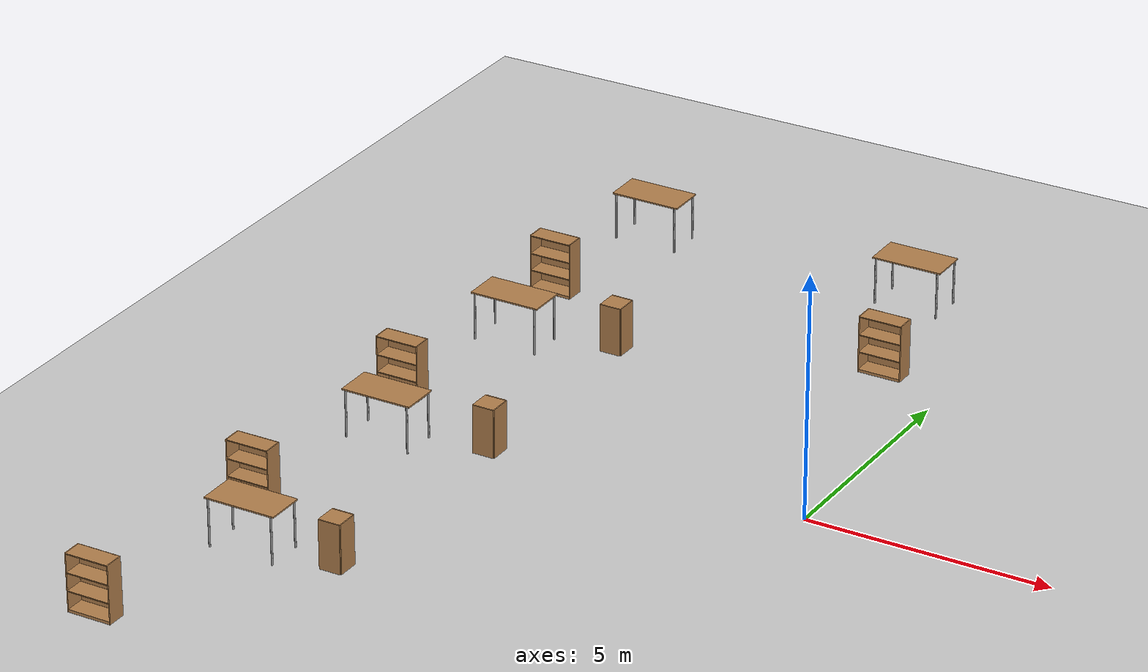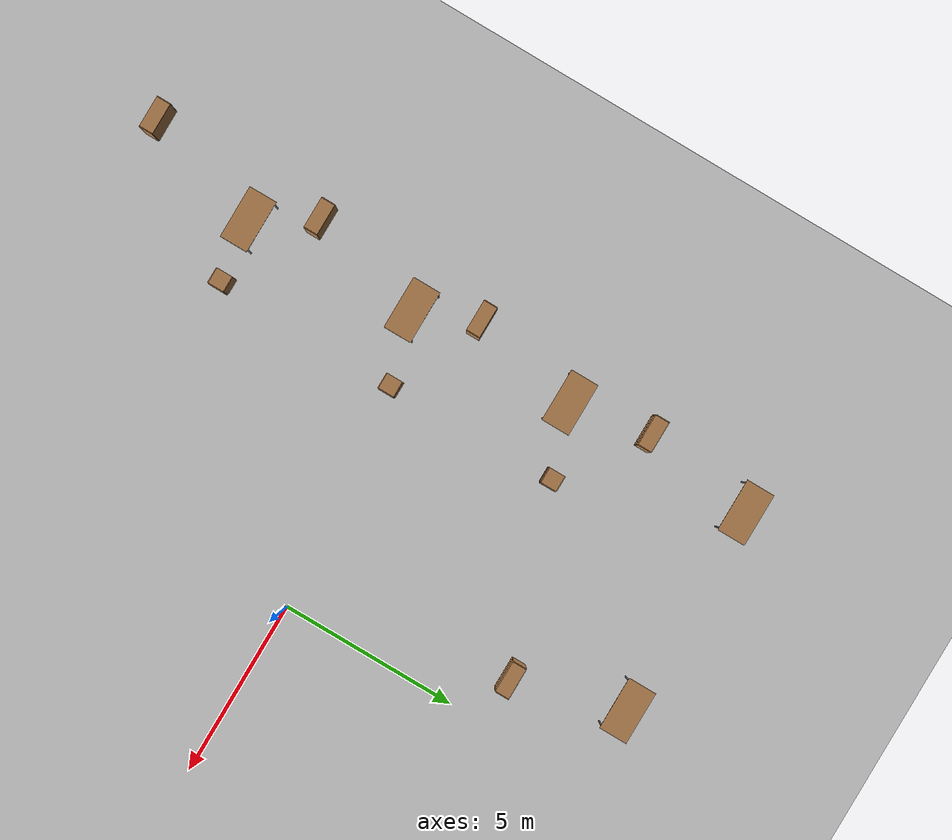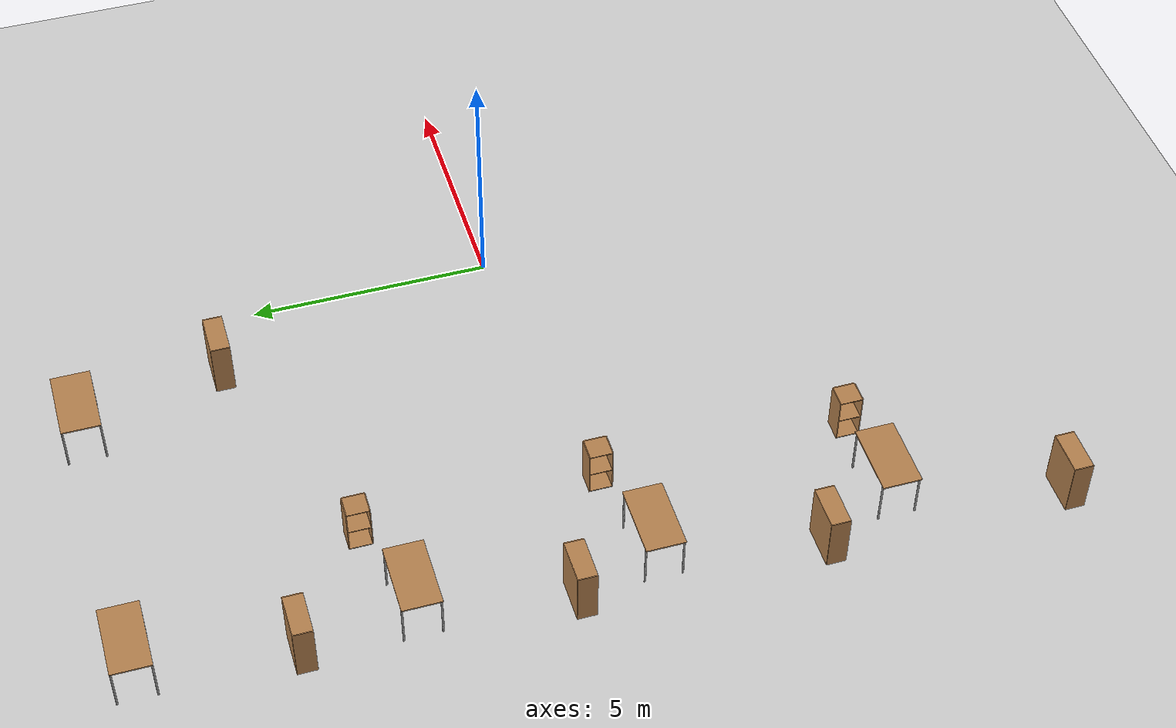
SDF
<sdf version="1.7">
 <world name="default">
  <model name="ground_plane">
   <static>1</static>
   <link name="link">
    <collision name="collision">
     <geometry><plane><normal>0 0 1</normal><size>100 100</size></plane></geometry>
     <surface>
      <contact><collide_bitmask>65535</collide_bitmask></contact>
      <friction><ode><mu>100</mu><mu2>50</mu2></ode></friction>
     </surface>
    </collision>
    <visual name="visual">
     <cast_shadows>0</cast_shadows>
     <geometry><plane><normal>0 0 1</normal><size>100 100</size></plane></geometry>
     <material>
      <script><uri>file://media/materials/scripts/gazebo.material</uri><name>Gazebo/Grey</name></script>
     </material>
    </visual>
   </link>
  </model>
  <model name="table">
   <static>1</static>
   <link name="link">
    <collision name="surface">
     <pose>0 0 1 0 -0 0</pose>
     <geometry><box><size>1.5 0.8 0.03</size></box></geometry>
     <surface><friction><ode><mu>0.6</mu><mu2>0.6</mu2></ode></friction></surface>
    </collision>
    <visual name="visual1">
     <pose>0 0 1 0 -0 0</pose>
     <geometry><box><size>1.5 0.8 0.03</size></box></geometry>
     <material>
      <script><uri>file://media/materials/scripts/gazebo.material</uri><name>Gazebo/Wood</name></script>
     </material>
    </visual>
    <collision name="front_left_leg">
     <pose>0.68 0.38 0.5 0 -0 0</pose>
     <geometry><cylinder><radius>0.02</radius><length>1</length></cylinder></geometry>
    </collision>
    <visual name="front_left_leg">
     <pose>0.68 0.38 0.5 0 -0 0</pose>
     <geometry><cylinder><radius>0.02</radius><length>1</length></cylinder></geometry>
     <material>
      <script><uri>file://media/materials/scripts/gazebo.material</uri><name>Gazebo/Grey</name></script>
     </material>
    </visual>
    <collision name="front_right_leg">
     <pose>0.68 -0.38 0.5 0 -0 0</pose>
     <geometry><cylinder><radius>0.02</radius><length>1</length></cylinder></geometry>
    </collision>
    <visual name="front_right_leg">
     <pose>0.68 -0.38 0.5 0 -0 0</pose>
     <geometry><cylinder><radius>0.02</radius><length>1</length></cylinder></geometry>
     <material>
      <script><uri>file://media/materials/scripts/gazebo.material</uri><name>Gazebo/Grey</name></script>
     </material>
    </visual>
    <collision name="back_right_leg">
     <pose>-0.68 -0.38 0.5 0 -0 0</pose>
     <geometry><cylinder><radius>0.02</radius><length>1</length></cylinder></geometry>
    </collision>
    <visual name="back_right_leg">
     <pose>-0.68 -0.38 0.5 0 -0 0</pose>
     <geometry><cylinder><radius>0.02</radius><length>1</length></cylinder></geometry>
     <material>
      <script><uri>file://media/materials/scripts/gazebo.material</uri><name>Gazebo/Grey</name></script>
     </material>
    </visual>
    <collision name="back_left_leg">
     <pose>-0.68 0.38 0.5 0 -0 0</pose>
     <geometry><cylinder><radius>0.02</radius><length>1</length></cylinder></geometry>
    </collision>
    <visual name="back_left_leg">
     <pose>-0.68 0.38 0.5 0 -0 0</pose>
     <geometry><cylinder><radius>0.02</radius><length>1</length></cylinder></geometry>
     <material>
      <script><uri>file://media/materials/scripts/gazebo.material</uri><name>Gazebo/Grey</name></script>
     </material>
    </visual>
   </link>
   <pose>-8.16897 -5.95032 0 0 -0 0</pose>
  </model>
  <model name="table_0">
   <static>1</static>
   <link name="link">
    <collision name="surface">
     <pose>0 0 1 0 -0 0</pose>
     <geometry><box><size>1.5 0.8 0.03</size></box></geometry>
     <surface><friction><ode><mu>0.6</mu><mu2>0.6</mu2></ode></friction></surface>
    </collision>
    <visual name="visual1">
     <pose>0 0 1 0 -0 0</pose>
     <geometry><box><size>1.5 0.8 0.03</size></box></geometry>
     <material>
      <script><uri>file://media/materials/scripts/gazebo.material</uri><name>Gazebo/Wood</name></script>
     </material>
    </visual>
    <collision name="front_left_leg">
     <pose>0.68 0.38 0.5 0 -0 0</pose>
     <geometry><cylinder><radius>0.02</radius><length>1</length></cylinder></geometry>
    </collision>
    <visual name="front_left_leg">
     <pose>0.68 0.38 0.5 0 -0 0</pose>
     <geometry><cylinder><radius>0.02</radius><length>1</length></cylinder></geometry>
     <material>
      <script><uri>file://media/materials/scripts/gazebo.material</uri><name>Gazebo/Grey</name></script>
     </material>
    </visual>
    <collision name="front_right_leg">
     <pose>0.68 -0.38 0.5 0 -0 0</pose>
     <geometry><cylinder><radius>0.02</radius><length>1</length></cylinder></geometry>
    </collision>
    <visual name="front_right_leg">
     <pose>0.68 -0.38 0.5 0 -0 0</pose>
     <geometry><cylinder><radius>0.02</radius><length>1</length></cylinder></geometry>
     <material>
      <script><uri>file://media/materials/scripts/gazebo.material</uri><name>Gazebo/Grey</name></script>
     </material>
    </visual>
    <collision name="back_right_leg">
     <pose>-0.68 -0.38 0.5 0 -0 0</pose>
     <geometry><cylinder><radius>0.02</radius><length>1</length></cylinder></geometry>
    </collision>
    <visual name="back_right_leg">
     <pose>-0.68 -0.38 0.5 0 -0 0</pose>
     <geometry><cylinder><radius>0.02</radius><length>1</length></cylinder></geometry>
     <material>
      <script><uri>file://media/materials/scripts/gazebo.material</uri><name>Gazebo/Grey</name></script>
     </material>
    </visual>
    <collision name="back_left_leg">
     <pose>-0.68 0.38 0.5 0 -0 0</pose>
     <geometry><cylinder><radius>0.02</radius><length>1</length></cylinder></geometry>
    </collision>
    <visual name="back_left_leg">
     <pose>-0.68 0.38 0.5 0 -0 0</pose>
     <geometry><cylinder><radius>0.02</radius><length>1</length></cylinder></geometry>
     <material>
      <script><uri>file://media/materials/scripts/gazebo.material</uri><name>Gazebo/Grey</name></script>
     </material>
    </visual>
   </link>
   <pose>-8.33103 -1.12506 0 0 -0 0</pose>
  </model>
  <model name="table_1">
   <static>1</static>
   <link name="link">
    <collision name="surface">
     <pose>0 0 1 0 -0 0</pose>
     <geometry><box><size>1.5 0.8 0.03</size></box></geometry>
     <surface><friction><ode><mu>0.6</mu><mu2>0.6</mu2></ode></friction></surface>
    </collision>
    <visual name="visual1">
     <pose>0 0 1 0 -0 0</pose>
     <geometry><box><size>1.5 0.8 0.03</size></box></geometry>
     <material>
      <script><uri>file://media/materials/scripts/gazebo.material</uri><name>Gazebo/Wood</name></script>
     </material>
    </visual>
    <collision name="front_left_leg">
     <pose>0.68 0.38 0.5 0 -0 0</pose>
     <geometry><cylinder><radius>0.02</radius><length>1</length></cylinder></geometry>
    </collision>
    <visual name="front_left_leg">
     <pose>0.68 0.38 0.5 0 -0 0</pose>
     <geometry><cylinder><radius>0.02</radius><length>1</length></cylinder></geometry>
     <material>
      <script><uri>file://media/materials/scripts/gazebo.material</uri><name>Gazebo/Grey</name></script>
     </material>
    </visual>
    <collision name="front_right_leg">
     <pose>0.68 -0.38 0.5 0 -0 0</pose>
     <geometry><cylinder><radius>0.02</radius><length>1</length></cylinder></geometry>
    </collision>
    <visual name="front_right_leg">
     <pose>0.68 -0.38 0.5 0 -0 0</pose>
     <geometry><cylinder><radius>0.02</radius><length>1</length></cylinder></geometry>
     <material>
      <script><uri>file://media/materials/scripts/gazebo.material</uri><name>Gazebo/Grey</name></script>
     </material>
    </visual>
    <collision name="back_right_leg">
     <pose>-0.68 -0.38 0.5 0 -0 0</pose>
     <geometry><cylinder><radius>0.02</radius><length>1</length></cylinder></geometry>
    </collision>
    <visual name="back_right_leg">
     <pose>-0.68 -0.38 0.5 0 -0 0</pose>
     <geometry><cylinder><radius>0.02</radius><length>1</length></cylinder></geometry>
     <material>
      <script><uri>file://media/materials/scripts/gazebo.material</uri><name>Gazebo/Grey</name></script>
     </material>
    </visual>
    <collision name="back_left_leg">
     <pose>-0.68 0.38 0.5 0 -0 0</pose>
     <geometry><cylinder><radius>0.02</radius><length>1</length></cylinder></geometry>
    </collision>
    <visual name="back_left_leg">
     <pose>-0.68 0.38 0.5 0 -0 0</pose>
     <geometry><cylinder><radius>0.02</radius><length>1</length></cylinder></geometry>
     <material>
      <script><uri>file://media/materials/scripts/gazebo.material</uri><name>Gazebo/Grey</name></script>
     </material>
    </visual>
   </link>
   <pose>-8.37192 3.60033 0 0 -0 0</pose>
  </model>
  <model name="table_5">
   <static>1</static>
   <link name="link">
    <collision name="surface">
     <pose>0 0 1 0 -0 0</pose>
     <geometry><box><size>1.5 0.8 0.03</size></box></geometry>
     <surface><friction><ode><mu>0.6</mu><mu2>0.6</mu2></ode></friction></surface>
    </collision>
    <visual name="visual1">
     <pose>0 0 1 0 -0 0</pose>
     <geometry><box><size>1.5 0.8 0.03</size></box></geometry>
     <material>
      <script><uri>file://media/materials/scripts/gazebo.material</uri><name>Gazebo/Wood</name></script>
     </material>
    </visual>
    <collision name="front_left_leg">
     <pose>0.68 0.38 0.5 0 -0 0</pose>
     <geometry><cylinder><radius>0.02</radius><length>1</length></cylinder></geometry>
    </collision>
    <visual name="front_left_leg">
     <pose>0.68 0.38 0.5 0 -0 0</pose>
     <geometry><cylinder><radius>0.02</radius><length>1</length></cylinder></geometry>
     <material>
      <script><uri>file://media/materials/scripts/gazebo.material</uri><name>Gazebo/Grey</name></script>
     </material>
    </visual>
    <collision name="front_right_leg">
     <pose>0.68 -0.38 0.5 0 -0 0</pose>
     <geometry><cylinder><radius>0.02</radius><length>1</length></cylinder></geometry>
    </collision>
    <visual name="front_right_leg">
     <pose>0.68 -0.38 0.5 0 -0 0</pose>
     <geometry><cylinder><radius>0.02</radius><length>1</length></cylinder></geometry>
     <material>
      <script><uri>file://media/materials/scripts/gazebo.material</uri><name>Gazebo/Grey</name></script>
     </material>
    </visual>
    <collision name="back_right_leg">
     <pose>-0.68 -0.38 0.5 0 -0 0</pose>
     <geometry><cylinder><radius>0.02</radius><length>1</length></cylinder></geometry>
    </collision>
    <visual name="back_right_leg">
     <pose>-0.68 -0.38 0.5 0 -0 0</pose>
     <geometry><cylinder><radius>0.02</radius><length>1</length></cylinder></geometry>
     <material>
      <script><uri>file://media/materials/scripts/gazebo.material</uri><name>Gazebo/Grey</name></script>
     </material>
    </visual>
    <collision name="back_left_leg">
     <pose>-0.68 0.38 0.5 0 -0 0</pose>
     <geometry><cylinder><radius>0.02</radius><length>1</length></cylinder></geometry>
    </collision>
    <visual name="back_left_leg">
     <pose>-0.68 0.38 0.5 0 -0 0</pose>
     <geometry><cylinder><radius>0.02</radius><length>1</length></cylinder></geometry>
     <material>
      <script><uri>file://media/materials/scripts/gazebo.material</uri><name>Gazebo/Grey</name></script>
     </material>
    </visual>
   </link>
   <pose>-8.26232 8.95233 0 0 -0 0</pose>
  </model>
  <model name="table_6">
   <static>1</static>
   <link name="link">
    <collision name="surface">
     <pose>0 0 1 0 -0 0</pose>
     <geometry><box><size>1.5 0.8 0.03</size></box></geometry>
     <surface><friction><ode><mu>0.6</mu><mu2>0.6</mu2></ode></friction></surface>
    </collision>
    <visual name="visual1">
     <pose>0 0 1 0 -0 0</pose>
     <geometry><box><size>1.5 0.8 0.03</size></box></geometry>
     <material>
      <script><uri>file://media/materials/scripts/gazebo.material</uri><name>Gazebo/Wood</name></script>
     </material>
    </visual>
    <collision name="front_left_leg">
     <pose>0.68 0.38 0.5 0 -0 0</pose>
     <geometry><cylinder><radius>0.02</radius><length>1</length></cylinder></geometry>
    </collision>
    <visual name="front_left_leg">
     <pose>0.68 0.38 0.5 0 -0 0</pose>
     <geometry><cylinder><radius>0.02</radius><length>1</length></cylinder></geometry>
     <material>
      <script><uri>file://media/materials/scripts/gazebo.material</uri><name>Gazebo/Grey</name></script>
     </material>
    </visual>
    <collision name="front_right_leg">
     <pose>0.68 -0.38 0.5 0 -0 0</pose>
     <geometry><cylinder><radius>0.02</radius><length>1</length></cylinder></geometry>
    </collision>
    <visual name="front_right_leg">
     <pose>0.68 -0.38 0.5 0 -0 0</pose>
     <geometry><cylinder><radius>0.02</radius><length>1</length></cylinder></geometry>
     <material>
      <script><uri>file://media/materials/scripts/gazebo.material</uri><name>Gazebo/Grey</name></script>
     </material>
    </visual>
    <collision name="back_right_leg">
     <pose>-0.68 -0.38 0.5 0 -0 0</pose>
     <geometry><cylinder><radius>0.02</radius><length>1</length></cylinder></geometry>
    </collision>
    <visual name="back_right_leg">
     <pose>-0.68 -0.38 0.5 0 -0 0</pose>
     <geometry><cylinder><radius>0.02</radius><length>1</length></cylinder></geometry>
     <material>
      <script><uri>file://media/materials/scripts/gazebo.material</uri><name>Gazebo/Grey</name></script>
     </material>
    </visual>
    <collision name="back_left_leg">
     <pose>-0.68 0.38 0.5 0 -0 0</pose>
     <geometry><cylinder><radius>0.02</radius><length>1</length></cylinder></geometry>
    </collision>
    <visual name="back_left_leg">
     <pose>-0.68 0.38 0.5 0 -0 0</pose>
     <geometry><cylinder><radius>0.02</radius><length>1</length></cylinder></geometry>
     <material>
      <script><uri>file://media/materials/scripts/gazebo.material</uri><name>Gazebo/Grey</name></script>
     </material>
    </visual>
   </link>
   <pose>-2.31074 8.9588 0 0 -0 0</pose>
  </model>
  <model name="cabinet">
   <static>1</static>
   <link name="cabinet_bottom_plate">
    <inertial>
     <pose>0 0 -1 0 -0 0</pose>
     <inertia><ixx>2.05</ixx><ixy>0</ixy><ixz>0</ixz><iyy>2.05</iyy><iyz>0</iyz><izz>2.05</izz></inertia>
     <mass>25</mass>
    </inertial>
    <collision name="cabinet_bottom_plate_geom">
     <pose>0 0 0.01 0 -0 0</pose>
     <geometry><box><size>0.45 0.45 0.02</size></box></geometry>
    </collision>
    <visual name="cabinet_bottom_plate_geom_visual">
     <pose>0 0 0.01 0 -0 0</pose>
     <geometry><box><size>0.45 0.45 0.02</size></box></geometry>
     <material>
      <script><uri>file://media/materials/scripts/gazebo.material</uri><name>Gazebo/Wood</name></script>
     </material>
    </visual>
    <collision name="cabinet_bottom_plate_geom_cabinet_back_plate">
     <pose>0.235 0 0.51 0 -0 0</pose>
     <geometry><box><size>0.02 0.45 1.02</size></box></geometry>
    </collision>
    <visual name="cabinet_bottom_plate_geom_cabinet_back_plate_visual">
     <pose>0.235 0 0.51 0 -0 0</pose>
     <geometry><box><size>0.02 0.45 1.02</size></box></geometry>
     <material>
      <script><uri>file://media/materials/scripts/gazebo.material</uri><name>Gazebo/Wood</name></script>
     </material>
    </visual>
    <collision name="cabinet_bottom_plate_geom_cabinet_left_plate">
     <pose>0 0.235 0.51 0 -0 0</pose>
     <geometry><box><size>0.45 0.02 1.02</size></box></geometry>
    </collision>
    <visual name="cabinet_bottom_plate_geom_cabinet_left_plate_visual">
     <pose>0 0.235 0.51 0 -0 0</pose>
     <geometry><box><size>0.45 0.02 1.02</size></box></geometry>
     <material>
      <script><uri>file://media/materials/scripts/gazebo.material</uri><name>Gazebo/Wood</name></script>
     </material>
    </visual>
    <collision name="cabinet_bottom_plate_geom_cabinet_middle_plate">
     <pose>0 0 0.51 0 -0 0</pose>
     <geometry><box><size>0.45 0.45 0.02</size></box></geometry>
    </collision>
    <visual name="cabinet_bottom_plate_geom_cabinet_middle_plate_visual">
     <pose>0 0 0.51 0 -0 0</pose>
     <geometry><box><size>0.45 0.45 0.02</size></box></geometry>
     <material>
      <script><uri>file://media/materials/scripts/gazebo.material</uri><name>Gazebo/Wood</name></script>
     </material>
    </visual>
    <collision name="cabinet_bottom_plate_geom_cabinet_right_plate">
     <pose>0 -0.235 0.51 0 -0 0</pose>
     <geometry><box><size>0.45 0.02 1.02</size></box></geometry>
    </collision>
    <visual name="cabinet_bottom_plate_geom_cabinet_right_plate_visual">
     <pose>0 -0.235 0.51 0 -0 0</pose>
     <geometry><box><size>0.45 0.02 1.02</size></box></geometry>
     <material>
      <script><uri>file://media/materials/scripts/gazebo.material</uri><name>Gazebo/Wood</name></script>
     </material>
    </visual>
    <collision name="cabinet_bottom_plate_geom_cabinet_top_plate">
     <pose>0 0 1.01 0 -0 0</pose>
     <geometry><box><size>0.45 0.45 0.02</size></box></geometry>
    </collision>
    <visual name="cabinet_bottom_plate_geom_cabinet_top_plate_visual">
     <pose>0 0 1.01 0 -0 0</pose>
     <geometry><box><size>0.45 0.45 0.02</size></box></geometry>
     <material>
      <script><uri>file://media/materials/scripts/gazebo.material</uri><name>Gazebo/Wood</name></script>
     </material>
    </visual>
   </link>
   <pose>-6.38234 -0.612936 0 0 -0 0</pose>
  </model>
  <model name="cabinet_0">
   <static>1</static>
   <link name="cabinet_bottom_plate">
    <inertial>
     <pose>0 0 -1 0 -0 0</pose>
     <inertia><ixx>2.05</ixx><ixy>0</ixy><ixz>0</ixz><iyy>2.05</iyy><iyz>0</iyz><izz>2.05</izz></inertia>
     <mass>25</mass>
    </inertial>
    <collision name="cabinet_bottom_plate_geom">
     <pose>0 0 0.01 0 -0 0</pose>
     <geometry><box><size>0.45 0.45 0.02</size></box></geometry>
    </collision>
    <visual name="cabinet_bottom_plate_geom_visual">
     <pose>0 0 0.01 0 -0 0</pose>
     <geometry><box><size>0.45 0.45 0.02</size></box></geometry>
     <material>
      <script><uri>file://media/materials/scripts/gazebo.material</uri><name>Gazebo/Wood</name></script>
     </material>
    </visual>
    <collision name="cabinet_bottom_plate_geom_cabinet_back_plate">
     <pose>0.235 0 0.51 0 -0 0</pose>
     <geometry><box><size>0.02 0.45 1.02</size></box></geometry>
    </collision>
    <visual name="cabinet_bottom_plate_geom_cabinet_back_plate_visual">
     <pose>0.235 0 0.51 0 -0 0</pose>
     <geometry><box><size>0.02 0.45 1.02</size></box></geometry>
     <material>
      <script><uri>file://media/materials/scripts/gazebo.material</uri><name>Gazebo/Wood</name></script>
     </material>
    </visual>
    <collision name="cabinet_bottom_plate_geom_cabinet_left_plate">
     <pose>0 0.235 0.51 0 -0 0</pose>
     <geometry><box><size>0.45 0.02 1.02</size></box></geometry>
    </collision>
    <visual name="cabinet_bottom_plate_geom_cabinet_left_plate_visual">
     <pose>0 0.235 0.51 0 -0 0</pose>
     <geometry><box><size>0.45 0.02 1.02</size></box></geometry>
     <material>
      <script><uri>file://media/materials/scripts/gazebo.material</uri><name>Gazebo/Wood</name></script>
     </material>
    </visual>
    <collision name="cabinet_bottom_plate_geom_cabinet_middle_plate">
     <pose>0 0 0.51 0 -0 0</pose>
     <geometry><box><size>0.45 0.45 0.02</size></box></geometry>
    </collision>
    <visual name="cabinet_bottom_plate_geom_cabinet_middle_plate_visual">
     <pose>0 0 0.51 0 -0 0</pose>
     <geometry><box><size>0.45 0.45 0.02</size></box></geometry>
     <material>
      <script><uri>file://media/materials/scripts/gazebo.material</uri><name>Gazebo/Wood</name></script>
     </material>
    </visual>
    <collision name="cabinet_bottom_plate_geom_cabinet_right_plate">
     <pose>0 -0.235 0.51 0 -0 0</pose>
     <geometry><box><size>0.45 0.02 1.02</size></box></geometry>
    </collision>
    <visual name="cabinet_bottom_plate_geom_cabinet_right_plate_visual">
     <pose>0 -0.235 0.51 0 -0 0</pose>
     <geometry><box><size>0.45 0.02 1.02</size></box></geometry>
     <material>
      <script><uri>file://media/materials/scripts/gazebo.material</uri><name>Gazebo/Wood</name></script>
     </material>
    </visual>
    <collision name="cabinet_bottom_plate_geom_cabinet_top_plate">
     <pose>0 0 1.01 0 -0 0</pose>
     <geometry><box><size>0.45 0.45 0.02</size></box></geometry>
    </collision>
    <visual name="cabinet_bottom_plate_geom_cabinet_top_plate_visual">
     <pose>0 0 1.01 0 -0 0</pose>
     <geometry><box><size>0.45 0.45 0.02</size></box></geometry>
     <material>
      <script><uri>file://media/materials/scripts/gazebo.material</uri><name>Gazebo/Wood</name></script>
     </material>
    </visual>
   </link>
   <pose>-6.4417 4.23866 0 0 -0 0</pose>
  </model>
  <model name="cabinet_1">
   <static>1</static>
   <link name="cabinet_bottom_plate">
    <inertial>
     <pose>0 0 -1 0 -0 0</pose>
     <inertia><ixx>2.05</ixx><ixy>0</ixy><ixz>0</ixz><iyy>2.05</iyy><iyz>0</iyz><izz>2.05</izz></inertia>
     <mass>25</mass>
    </inertial>
    <collision name="cabinet_bottom_plate_geom">
     <pose>0 0 0.01 0 -0 0</pose>
     <geometry><box><size>0.45 0.45 0.02</size></box></geometry>
    </collision>
    <visual name="cabinet_bottom_plate_geom_visual">
     <pose>0 0 0.01 0 -0 0</pose>
     <geometry><box><size>0.45 0.45 0.02</size></box></geometry>
     <material>
      <script><uri>file://media/materials/scripts/gazebo.material</uri><name>Gazebo/Wood</name></script>
     </material>
    </visual>
    <collision name="cabinet_bottom_plate_geom_cabinet_back_plate">
     <pose>0.235 0 0.51 0 -0 0</pose>
     <geometry><box><size>0.02 0.45 1.02</size></box></geometry>
    </collision>
    <visual name="cabinet_bottom_plate_geom_cabinet_back_plate_visual">
     <pose>0.235 0 0.51 0 -0 0</pose>
     <geometry><box><size>0.02 0.45 1.02</size></box></geometry>
     <material>
      <script><uri>file://media/materials/scripts/gazebo.material</uri><name>Gazebo/Wood</name></script>
     </material>
    </visual>
    <collision name="cabinet_bottom_plate_geom_cabinet_left_plate">
     <pose>0 0.235 0.51 0 -0 0</pose>
     <geometry><box><size>0.45 0.02 1.02</size></box></geometry>
    </collision>
    <visual name="cabinet_bottom_plate_geom_cabinet_left_plate_visual">
     <pose>0 0.235 0.51 0 -0 0</pose>
     <geometry><box><size>0.45 0.02 1.02</size></box></geometry>
     <material>
      <script><uri>file://media/materials/scripts/gazebo.material</uri><name>Gazebo/Wood</name></script>
     </material>
    </visual>
    <collision name="cabinet_bottom_plate_geom_cabinet_middle_plate">
     <pose>0 0 0.51 0 -0 0</pose>
     <geometry><box><size>0.45 0.45 0.02</size></box></geometry>
    </collision>
    <visual name="cabinet_bottom_plate_geom_cabinet_middle_plate_visual">
     <pose>0 0 0.51 0 -0 0</pose>
     <geometry><box><size>0.45 0.45 0.02</size></box></geometry>
     <material>
      <script><uri>file://media/materials/scripts/gazebo.material</uri><name>Gazebo/Wood</name></script>
     </material>
    </visual>
    <collision name="cabinet_bottom_plate_geom_cabinet_right_plate">
     <pose>0 -0.235 0.51 0 -0 0</pose>
     <geometry><box><size>0.45 0.02 1.02</size></box></geometry>
    </collision>
    <visual name="cabinet_bottom_plate_geom_cabinet_right_plate_visual">
     <pose>0 -0.235 0.51 0 -0 0</pose>
     <geometry><box><size>0.45 0.02 1.02</size></box></geometry>
     <material>
      <script><uri>file://media/materials/scripts/gazebo.material</uri><name>Gazebo/Wood</name></script>
     </material>
    </visual>
    <collision name="cabinet_bottom_plate_geom_cabinet_top_plate">
     <pose>0 0 1.01 0 -0 0</pose>
     <geometry><box><size>0.45 0.45 0.02</size></box></geometry>
    </collision>
    <visual name="cabinet_bottom_plate_geom_cabinet_top_plate_visual">
     <pose>0 0 1.01 0 -0 0</pose>
     <geometry><box><size>0.45 0.45 0.02</size></box></geometry>
     <material>
      <script><uri>file://media/materials/scripts/gazebo.material</uri><name>Gazebo/Wood</name></script>
     </material>
    </visual>
   </link>
   <pose>-6.45913 -5.77414 0 0 -0 0</pose>
  </model>
  <model name="bookshelf">
   <static>1</static>
   <link name="link">
    <inertial><mass>1</mass></inertial>
    <collision name="back">
     <pose>0 0.005 0.6 0 -0 0</pose>
     <geometry><box><size>0.9 0.01 1.2</size></box></geometry>
    </collision>
    <visual name="visual1">
     <pose>0 0.005 0.6 0 -0 0</pose>
     <geometry><box><size>0.9 0.01 1.2</size></box></geometry>
     <material>
      <script><uri>file://media/materials/scripts/gazebo.material</uri><name>Gazebo/Wood</name></script>
     </material>
    </visual>
    <collision name="left_side">
     <pose>0.45 -0.195 0.6 0 -0 0</pose>
     <geometry><box><size>0.02 0.4 1.2</size></box></geometry>
    </collision>
    <visual name="visual2">
     <pose>0.45 -0.195 0.6 0 -0 0</pose>
     <geometry><box><size>0.02 0.4 1.2</size></box></geometry>
     <material>
      <script><uri>file://media/materials/scripts/gazebo.material</uri><name>Gazebo/Wood</name></script>
     </material>
    </visual>
    <collision name="right_side">
     <pose>-0.45 -0.195 0.6 0 -0 0</pose>
     <geometry><box><size>0.02 0.4 1.2</size></box></geometry>
    </collision>
    <visual name="visual3">
     <pose>-0.45 -0.195 0.6 0 -0 0</pose>
     <geometry><box><size>0.02 0.4 1.2</size></box></geometry>
     <material>
      <script><uri>file://media/materials/scripts/gazebo.material</uri><name>Gazebo/Wood</name></script>
     </material>
    </visual>
    <collision name="bottom">
     <pose>0 -0.195 0.03 0 -0 0</pose>
     <geometry><box><size>0.88 0.4 0.06</size></box></geometry>
    </collision>
    <visual name="visual4">
     <pose>0 -0.195 0.03 0 -0 0</pose>
     <geometry><box><size>0.88 0.4 0.06</size></box></geometry>
     <material>
      <script><uri>file://media/materials/scripts/gazebo.material</uri><name>Gazebo/Wood</name></script>
     </material>
    </visual>
    <collision name="top">
     <pose>0 -0.195 1.19 0 -0 0</pose>
     <geometry><box><size>0.88 0.4 0.02</size></box></geometry>
    </collision>
    <visual name="visual5">
     <pose>0 -0.195 1.19 0 -0 0</pose>
     <geometry><box><size>0.88 0.4 0.02</size></box></geometry>
     <material>
      <script><uri>file://media/materials/scripts/gazebo.material</uri><name>Gazebo/Wood</name></script>
     </material>
    </visual>
    <collision name="low_shelf">
     <pose>0 -0.195 0.43 0 -0 0</pose>
     <geometry><box><size>0.88 0.4 0.02</size></box></geometry>
    </collision>
    <visual name="visual6">
     <pose>0 -0.195 0.43 0 -0 0</pose>
     <geometry><box><size>0.88 0.4 0.02</size></box></geometry>
     <material>
      <script><uri>file://media/materials/scripts/gazebo.material</uri><name>Gazebo/Wood</name></script>
     </material>
    </visual>
    <collision name="high_shelf">
     <pose>0 -0.195 0.8 0 -0 0</pose>
     <geometry><box><size>0.88 0.4 0.02</size></box></geometry>
    </collision>
    <visual name="visual7">
     <pose>0 -0.195 0.8 0 -0 0</pose>
     <geometry><box><size>0.88 0.4 0.02</size></box></geometry>
     <material>
      <script><uri>file://media/materials/scripts/gazebo.material</uri><name>Gazebo/Wood</name></script>
     </material>
    </visual>
   </link>
   <pose>-9.16992 -4.20554 0 0 -0 0</pose>
  </model>
  <model name="bookshelf_0">
   <static>1</static>
   <link name="link">
    <inertial><mass>1</mass></inertial>
    <collision name="back">
     <pose>0 0.005 0.6 0 -0 0</pose>
     <geometry><box><size>0.9 0.01 1.2</size></box></geometry>
    </collision>
    <visual name="visual1">
     <pose>0 0.005 0.6 0 -0 0</pose>
     <geometry><box><size>0.9 0.01 1.2</size></box></geometry>
     <material>
      <script><uri>file://media/materials/scripts/gazebo.material</uri><name>Gazebo/Wood</name></script>
     </material>
    </visual>
    <collision name="left_side">
     <pose>0.45 -0.195 0.6 0 -0 0</pose>
     <geometry><box><size>0.02 0.4 1.2</size></box></geometry>
    </collision>
    <visual name="visual2">
     <pose>0.45 -0.195 0.6 0 -0 0</pose>
     <geometry><box><size>0.02 0.4 1.2</size></box></geometry>
     <material>
      <script><uri>file://media/materials/scripts/gazebo.material</uri><name>Gazebo/Wood</name></script>
     </material>
    </visual>
    <collision name="right_side">
     <pose>-0.45 -0.195 0.6 0 -0 0</pose>
     <geometry><box><size>0.02 0.4 1.2</size></box></geometry>
    </collision>
    <visual name="visual3">
     <pose>-0.45 -0.195 0.6 0 -0 0</pose>
     <geometry><box><size>0.02 0.4 1.2</size></box></geometry>
     <material>
      <script><uri>file://media/materials/scripts/gazebo.material</uri><name>Gazebo/Wood</name></script>
     </material>
    </visual>
    <collision name="bottom">
     <pose>0 -0.195 0.03 0 -0 0</pose>
     <geometry><box><size>0.88 0.4 0.06</size></box></geometry>
    </collision>
    <visual name="visual4">
     <pose>0 -0.195 0.03 0 -0 0</pose>
     <geometry><box><size>0.88 0.4 0.06</size></box></geometry>
     <material>
      <script><uri>file://media/materials/scripts/gazebo.material</uri><name>Gazebo/Wood</name></script>
     </material>
    </visual>
    <collision name="top">
     <pose>0 -0.195 1.19 0 -0 0</pose>
     <geometry><box><size>0.88 0.4 0.02</size></box></geometry>
    </collision>
    <visual name="visual5">
     <pose>0 -0.195 1.19 0 -0 0</pose>
     <geometry><box><size>0.88 0.4 0.02</size></box></geometry>
     <material>
      <script><uri>file://media/materials/scripts/gazebo.material</uri><name>Gazebo/Wood</name></script>
     </material>
    </visual>
    <collision name="low_shelf">
     <pose>0 -0.195 0.43 0 -0 0</pose>
     <geometry><box><size>0.88 0.4 0.02</size></box></geometry>
    </collision>
    <visual name="visual6">
     <pose>0 -0.195 0.43 0 -0 0</pose>
     <geometry><box><size>0.88 0.4 0.02</size></box></geometry>
     <material>
      <script><uri>file://media/materials/scripts/gazebo.material</uri><name>Gazebo/Wood</name></script>
     </material>
    </visual>
    <collision name="high_shelf">
     <pose>0 -0.195 0.8 0 -0 0</pose>
     <geometry><box><size>0.88 0.4 0.02</size></box></geometry>
    </collision>
    <visual name="visual7">
     <pose>0 -0.195 0.8 0 -0 0</pose>
     <geometry><box><size>0.88 0.4 0.02</size></box></geometry>
     <material>
      <script><uri>file://media/materials/scripts/gazebo.material</uri><name>Gazebo/Wood</name></script>
     </material>
    </visual>
   </link>
   <pose>-9.22508 -9.1669 0 0 -0 0</pose>
  </model>
  <model name="bookshelf_1">
   <static>1</static>
   <link name="link">
    <inertial><mass>1</mass></inertial>
    <collision name="back">
     <pose>0 0.005 0.6 0 -0 0</pose>
     <geometry><box><size>0.9 0.01 1.2</size></box></geometry>
    </collision>
    <visual name="visual1">
     <pose>0 0.005 0.6 0 -0 0</pose>
     <geometry><box><size>0.9 0.01 1.2</size></box></geometry>
     <material>
      <script><uri>file://media/materials/scripts/gazebo.material</uri><name>Gazebo/Wood</name></script>
     </material>
    </visual>
    <collision name="left_side">
     <pose>0.45 -0.195 0.6 0 -0 0</pose>
     <geometry><box><size>0.02 0.4 1.2</size></box></geometry>
    </collision>
    <visual name="visual2">
     <pose>0.45 -0.195 0.6 0 -0 0</pose>
     <geometry><box><size>0.02 0.4 1.2</size></box></geometry>
     <material>
      <script><uri>file://media/materials/scripts/gazebo.material</uri><name>Gazebo/Wood</name></script>
     </material>
    </visual>
    <collision name="right_side">
     <pose>-0.45 -0.195 0.6 0 -0 0</pose>
     <geometry><box><size>0.02 0.4 1.2</size></box></geometry>
    </collision>
    <visual name="visual3">
     <pose>-0.45 -0.195 0.6 0 -0 0</pose>
     <geometry><box><size>0.02 0.4 1.2</size></box></geometry>
     <material>
      <script><uri>file://media/materials/scripts/gazebo.material</uri><name>Gazebo/Wood</name></script>
     </material>
    </visual>
    <collision name="bottom">
     <pose>0 -0.195 0.03 0 -0 0</pose>
     <geometry><box><size>0.88 0.4 0.06</size></box></geometry>
    </collision>
    <visual name="visual4">
     <pose>0 -0.195 0.03 0 -0 0</pose>
     <geometry><box><size>0.88 0.4 0.06</size></box></geometry>
     <material>
      <script><uri>file://media/materials/scripts/gazebo.material</uri><name>Gazebo/Wood</name></script>
     </material>
    </visual>
    <collision name="top">
     <pose>0 -0.195 1.19 0 -0 0</pose>
     <geometry><box><size>0.88 0.4 0.02</size></box></geometry>
    </collision>
    <visual name="visual5">
     <pose>0 -0.195 1.19 0 -0 0</pose>
     <geometry><box><size>0.88 0.4 0.02</size></box></geometry>
     <material>
      <script><uri>file://media/materials/scripts/gazebo.material</uri><name>Gazebo/Wood</name></script>
     </material>
    </visual>
    <collision name="low_shelf">
     <pose>0 -0.195 0.43 0 -0 0</pose>
     <geometry><box><size>0.88 0.4 0.02</size></box></geometry>
    </collision>
    <visual name="visual6">
     <pose>0 -0.195 0.43 0 -0 0</pose>
     <geometry><box><size>0.88 0.4 0.02</size></box></geometry>
     <material>
      <script><uri>file://media/materials/scripts/gazebo.material</uri><name>Gazebo/Wood</name></script>
     </material>
    </visual>
    <collision name="high_shelf">
     <pose>0 -0.195 0.8 0 -0 0</pose>
     <geometry><box><size>0.88 0.4 0.02</size></box></geometry>
    </collision>
    <visual name="visual7">
     <pose>0 -0.195 0.8 0 -0 0</pose>
     <geometry><box><size>0.88 0.4 0.02</size></box></geometry>
     <material>
      <script><uri>file://media/materials/scripts/gazebo.material</uri><name>Gazebo/Wood</name></script>
     </material>
    </visual>
   </link>
   <pose>-9.04456 0.73862 0 0 -0 0</pose>
  </model>
  <model name="bookshelf_2">
   <static>1</static>
   <link name="link">
    <inertial><mass>1</mass></inertial>
    <collision name="back">
     <pose>0 0.005 0.6 0 -0 0</pose>
     <geometry><box><size>0.9 0.01 1.2</size></box></geometry>
    </collision>
    <visual name="visual1">
     <pose>0 0.005 0.6 0 -0 0</pose>
     <geometry><box><size>0.9 0.01 1.2</size></box></geometry>
     <material>
      <script><uri>file://media/materials/scripts/gazebo.material</uri><name>Gazebo/Wood</name></script>
     </material>
    </visual>
    <collision name="left_side">
     <pose>0.45 -0.195 0.6 0 -0 0</pose>
     <geometry><box><size>0.02 0.4 1.2</size></box></geometry>
    </collision>
    <visual name="visual2">
     <pose>0.45 -0.195 0.6 0 -0 0</pose>
     <geometry><box><size>0.02 0.4 1.2</size></box></geometry>
     <material>
      <script><uri>file://media/materials/scripts/gazebo.material</uri><name>Gazebo/Wood</name></script>
     </material>
    </visual>
    <collision name="right_side">
     <pose>-0.45 -0.195 0.6 0 -0 0</pose>
     <geometry><box><size>0.02 0.4 1.2</size></box></geometry>
    </collision>
    <visual name="visual3">
     <pose>-0.45 -0.195 0.6 0 -0 0</pose>
     <geometry><box><size>0.02 0.4 1.2</size></box></geometry>
     <material>
      <script><uri>file://media/materials/scripts/gazebo.material</uri><name>Gazebo/Wood</name></script>
     </material>
    </visual>
    <collision name="bottom">
     <pose>0 -0.195 0.03 0 -0 0</pose>
     <geometry><box><size>0.88 0.4 0.06</size></box></geometry>
    </collision>
    <visual name="visual4">
     <pose>0 -0.195 0.03 0 -0 0</pose>
     <geometry><box><size>0.88 0.4 0.06</size></box></geometry>
     <material>
      <script><uri>file://media/materials/scripts/gazebo.material</uri><name>Gazebo/Wood</name></script>
     </material>
    </visual>
    <collision name="top">
     <pose>0 -0.195 1.19 0 -0 0</pose>
     <geometry><box><size>0.88 0.4 0.02</size></box></geometry>
    </collision>
    <visual name="visual5">
     <pose>0 -0.195 1.19 0 -0 0</pose>
     <geometry><box><size>0.88 0.4 0.02</size></box></geometry>
     <material>
      <script><uri>file://media/materials/scripts/gazebo.material</uri><name>Gazebo/Wood</name></script>
     </material>
    </visual>
    <collision name="low_shelf">
     <pose>0 -0.195 0.43 0 -0 0</pose>
     <geometry><box><size>0.88 0.4 0.02</size></box></geometry>
    </collision>
    <visual name="visual6">
     <pose>0 -0.195 0.43 0 -0 0</pose>
     <geometry><box><size>0.88 0.4 0.02</size></box></geometry>
     <material>
      <script><uri>file://media/materials/scripts/gazebo.material</uri><name>Gazebo/Wood</name></script>
     </material>
    </visual>
    <collision name="high_shelf">
     <pose>0 -0.195 0.8 0 -0 0</pose>
     <geometry><box><size>0.88 0.4 0.02</size></box></geometry>
    </collision>
    <visual name="visual7">
     <pose>0 -0.195 0.8 0 -0 0</pose>
     <geometry><box><size>0.88 0.4 0.02</size></box></geometry>
     <material>
      <script><uri>file://media/materials/scripts/gazebo.material</uri><name>Gazebo/Wood</name></script>
     </material>
    </visual>
   </link>
   <pose>-8.78198 6.04357 0 0 -0 0</pose>
  </model>
  <model name="bookshelf_3">
   <static>1</static>
   <link name="link">
    <inertial><mass>1</mass></inertial>
    <collision name="back">
     <pose>0 0.005 0.6 0 -0 0</pose>
     <geometry><box><size>0.9 0.01 1.2</size></box></geometry>
    </collision>
    <visual name="visual1">
     <pose>0 0.005 0.6 0 -0 0</pose>
     <geometry><box><size>0.9 0.01 1.2</size></box></geometry>
     <material>
      <script><uri>file://media/materials/scripts/gazebo.material</uri><name>Gazebo/Wood</name></script>
     </material>
    </visual>
    <collision name="left_side">
     <pose>0.45 -0.195 0.6 0 -0 0</pose>
     <geometry><box><size>0.02 0.4 1.2</size></box></geometry>
    </collision>
    <visual name="visual2">
     <pose>0.45 -0.195 0.6 0 -0 0</pose>
     <geometry><box><size>0.02 0.4 1.2</size></box></geometry>
     <material>
      <script><uri>file://media/materials/scripts/gazebo.material</uri><name>Gazebo/Wood</name></script>
     </material>
    </visual>
    <collision name="right_side">
     <pose>-0.45 -0.195 0.6 0 -0 0</pose>
     <geometry><box><size>0.02 0.4 1.2</size></box></geometry>
    </collision>
    <visual name="visual3">
     <pose>-0.45 -0.195 0.6 0 -0 0</pose>
     <geometry><box><size>0.02 0.4 1.2</size></box></geometry>
     <material>
      <script><uri>file://media/materials/scripts/gazebo.material</uri><name>Gazebo/Wood</name></script>
     </material>
    </visual>
    <collision name="bottom">
     <pose>0 -0.195 0.03 0 -0 0</pose>
     <geometry><box><size>0.88 0.4 0.06</size></box></geometry>
    </collision>
    <visual name="visual4">
     <pose>0 -0.195 0.03 0 -0 0</pose>
     <geometry><box><size>0.88 0.4 0.06</size></box></geometry>
     <material>
      <script><uri>file://media/materials/scripts/gazebo.material</uri><name>Gazebo/Wood</name></script>
     </material>
    </visual>
    <collision name="top">
     <pose>0 -0.195 1.19 0 -0 0</pose>
     <geometry><box><size>0.88 0.4 0.02</size></box></geometry>
    </collision>
    <visual name="visual5">
     <pose>0 -0.195 1.19 0 -0 0</pose>
     <geometry><box><size>0.88 0.4 0.02</size></box></geometry>
     <material>
      <script><uri>file://media/materials/scripts/gazebo.material</uri><name>Gazebo/Wood</name></script>
     </material>
    </visual>
    <collision name="low_shelf">
     <pose>0 -0.195 0.43 0 -0 0</pose>
     <geometry><box><size>0.88 0.4 0.02</size></box></geometry>
    </collision>
    <visual name="visual6">
     <pose>0 -0.195 0.43 0 -0 0</pose>
     <geometry><box><size>0.88 0.4 0.02</size></box></geometry>
     <material>
      <script><uri>file://media/materials/scripts/gazebo.material</uri><name>Gazebo/Wood</name></script>
     </material>
    </visual>
    <collision name="high_shelf">
     <pose>0 -0.195 0.8 0 -0 0</pose>
     <geometry><box><size>0.88 0.4 0.02</size></box></geometry>
    </collision>
    <visual name="visual7">
     <pose>0 -0.195 0.8 0 -0 0</pose>
     <geometry><box><size>0.88 0.4 0.02</size></box></geometry>
     <material>
      <script><uri>file://media/materials/scripts/gazebo.material</uri><name>Gazebo/Wood</name></script>
     </material>
    </visual>
   </link>
   <pose>-1.45117 6.15146 0 0 -0 0</pose>
  </model>
 </world>
</sdf>
